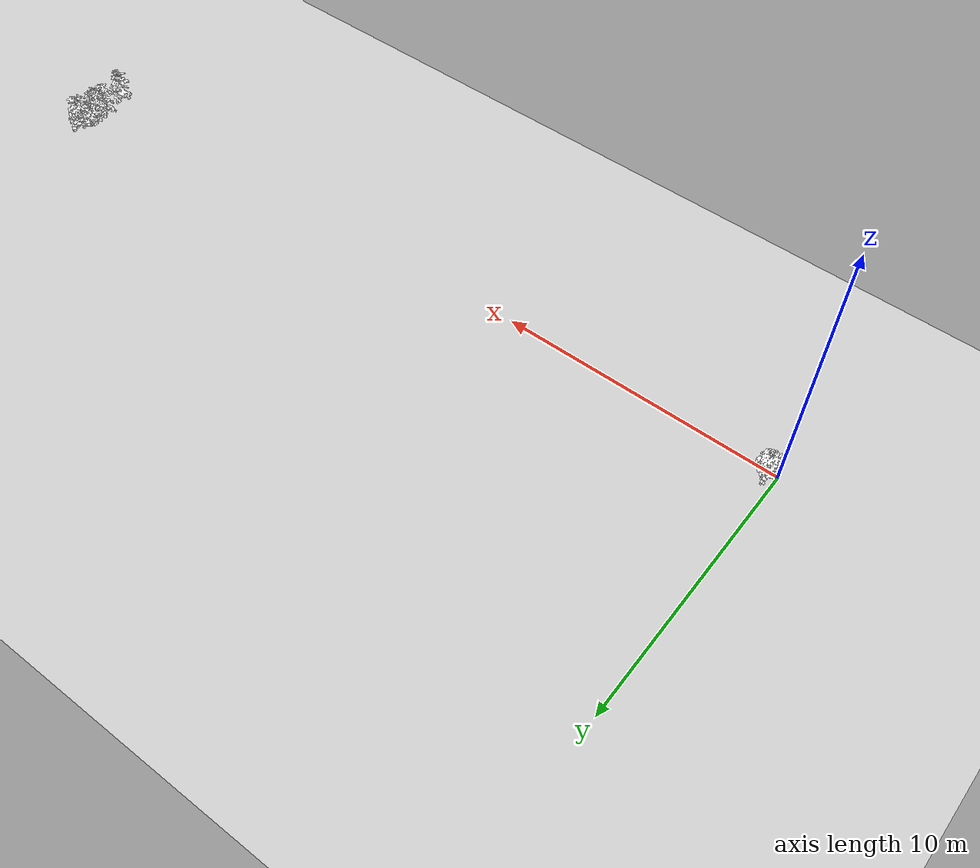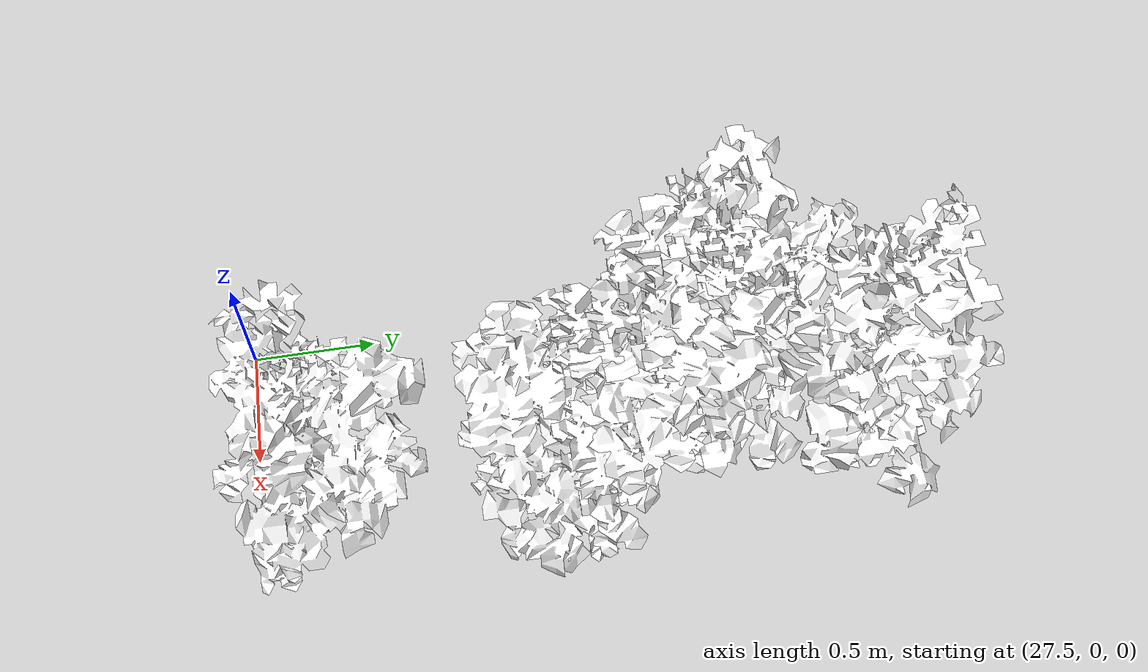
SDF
<sdf version="1.7">
 <world name="field">
  <physics name="1ms" type="ignored">
   <max_step_size>0.001</max_step_size>
   <real_time_factor>1</real_time_factor>
   <real_time_update_rate>1000</real_time_update_rate>
  </physics>
  <plugin name="ignition::gazebo::systems::Physics" filename="ignition-gazebo-physics-system"/>
  <plugin name="ignition::gazebo::systems::UserCommands" filename="ignition-gazebo-user-commands-system"/>
  <plugin name="ignition::gazebo::systems::SceneBroadcaster" filename="ignition-gazebo-scene-broadcaster-system"/>
  <plugin filename="ignition-gazebo-sensors-system" name="ignition::gazebo::systems::Sensors">
   <render_engine>ogre2</render_engine>
  </plugin>
  <scene><ambient>1 1 1 1</ambient><background>0.8 0.8 0.8 1</background><shadows>1</shadows></scene>
  <light name="sun" type="directional">
   <pose>0 0 10 0 -0 0</pose>
   <diffuse>0.8 0.8 0.8 1</diffuse>
   <specular>0.8 0.8 0.8 1</specular>
   <attenuation>
    <range>1000</range>
    <constant>0.9</constant>
    <linear>0.01</linear>
    <quadratic>0.001</quadratic>
   </attenuation>
   <direction>-0.5 0.1 -0.9</direction>
   <spot><inner_angle>0</inner_angle><outer_angle>0</outer_angle><falloff>0</falloff></spot>
  </light>
  <gravity>0 0 -9.8</gravity>
  <magnetic_field>6e-06 2.3e-05 -4.2e-05</magnetic_field>
  <atmosphere type="adiabatic"/>
  <include><uri>ground</uri><name>ground</name><pose>5.0 5.0 0 0 0 0</pose></include>
  <include><uri>tomato_11</uri><name>tomato_11</name><pose>0.3 0.3 0 0 0 0</pose></include>
  <include><uri>tomato_106</uri><name>tomato_106</name><pose>28.0 1.7999999999999998 0 0 0 0</pose></include>
  <include><uri>tomato_107</uri><name>tomato_107</name><pose>28.0 2.1 0 0 0 0</pose></include>
  <include><uri>tomato_111</uri><name>tomato_111</name><pose>28.3 0.3 0 0 0 0</pose></include>
  <include><uri>tomato_114</uri><name>tomato_114</name><pose>28.3 1.2 0 0 0 0</pose></include>
  <include><uri>tomato_115</uri><name>tomato_115</name><pose>28.3 1.5 0 0 0 0</pose></include>
  <include><uri>tomato_118</uri><name>tomato_118</name><pose>28.3 2.4 0 0 0 0</pose></include>
 </world>
</sdf>

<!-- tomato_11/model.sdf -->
<sdf version="1.6">
  <model name="tomato_11">
    <static>true</static>
    <link name="link">
      <collision name="collision">
        <geometry>
          <box>
            <size>.1 .1 1</size>
          </box>
        </geometry>
      </collision>
      <visual name="branch">
        <geometry>
          <mesh>
            <uri>file://tomato_11/meshes/tomato.dae</uri>
            <submesh>
              <name>Branch1</name>
            </submesh>
          </mesh>
        </geometry>
        <material>
          <diffuse>1.0 1.0 1.0</diffuse>
          <pbr>
            <metal>
              <albedo_map>file://tomato_11/materials/textures/AG15brn1.png</albedo_map>
            </metal>
          </pbr>
        </material>
          <plugin filename="ignition-gazebo-label-system" name="ignition::gazebo::systems::Label">
            <label>2</label>
          </plugin>
      </visual>
      <visual name="leaf1">
        <geometry>
          <mesh>
            <uri>file://tomato_11/meshes/tomato.dae</uri>
            <submesh>
              <name>Leaf1</name>
            </submesh>
          </mesh>
        </geometry>
        <material>
          <diffuse>1.0 1.0 1.0</diffuse>
          <pbr>
            <metal>
              <albedo_map>file://tomato_11/materials/textures/AG15lef1.png</albedo_map>
            </metal>
          </pbr>
        </material>
          <plugin filename="ignition-gazebo-label-system" name="ignition::gazebo::systems::Label">
            <label>3</label>
          </plugin>
      </visual>
      <visual name="leaf2">
        <geometry>
          <mesh>
            <uri>file://tomato_11/meshes/tomato.dae</uri>
            <submesh>
              <name>Leaf2</name>
            </submesh>
          </mesh>
        </geometry>
        <material>
          <diffuse>1.0 1.0 1.0</diffuse>
          <pbr>
            <metal>
              <albedo_map>file://tomato_11/materials/textures/AG15lef2.png</albedo_map>
            </metal>
          </pbr>
        </material>
          <plugin filename="ignition-gazebo-label-system" name="ignition::gazebo::systems::Label">
            <label>3</label>
          </plugin>
      </visual>
      <visual name="fruit1">
        <geometry>
          <mesh>
            <uri>file://tomato_11/meshes/tomato.dae</uri>
            <submesh>
              <name>Fruit1</name>
            </submesh>
          </mesh>
        </geometry>
        <material>
          <diffuse>1.0 1.0 1.0</diffuse>
          <pbr>
            <metal>
              <albedo_map>file://tomato_11/materials/textures/AG15frt1.png</albedo_map>
            </metal>
          </pbr>
        </material>
          <plugin filename="ignition-gazebo-label-system" name="ignition::gazebo::systems::Label">
            <label>4</label>
          </plugin>
      </visual>
      <visual name="fruit2">
        <geometry>
          <mesh>
            <uri>file://tomato_11/meshes/tomato.dae</uri>
            <submesh>
              <name>Fruit2</name>
            </submesh>
          </mesh>
        </geometry>
        <material>
          <diffuse>1.0 1.0 1.0</diffuse>
          <pbr>
            <metal>
              <albedo_map>file://tomato_11/materials/textures/AG15frt2.png</albedo_map>
            </metal>
          </pbr>
        </material>
          <plugin filename="ignition-gazebo-label-system" name="ignition::gazebo::systems::Label">
            <label>4</label>
          </plugin>
      </visual>
      <visual name="fruit3">
        <geometry>
          <mesh>
            <uri>file://tomato_11/meshes/tomato.dae</uri>
            <submesh>
              <name>Fruit3</name>
            </submesh>
          </mesh>
        </geometry>
        <material>
          <diffuse>1.0 1.0 1.0</diffuse>
          <pbr>
            <metal>
              <albedo_map>file://tomato_11/materials/textures/AG15frt3.png</albedo_map>
            </metal>
          </pbr>
        </material>
      </visual>
          <plugin filename="ignition-gazebo-label-system" name="ignition::gazebo::systems::Label">
            <label>4</label>
          </plugin>
      <visual name="fruit4">
        <geometry>
          <mesh>
            <uri>file://tomato_11/meshes/tomato.dae</uri>
            <submesh>
              <name>Fruit4</name>
            </submesh>
          </mesh>
        </geometry>
        <material>
          <diffuse>1.0 1.0 1.0</diffuse>
          <pbr>
            <metal>
              <albedo_map>file://tomato_11/materials/textures/AG15frt4.png</albedo_map>
            </metal>
          </pbr>
        </material>
          <plugin filename="ignition-gazebo-label-system" name="ignition::gazebo::systems::Label">
            <label>4</label>
          </plugin>
      </visual>
      <visual name="blossom1">
        <geometry>
          <mesh>
            <uri>file://tomato_11/meshes/tomato.dae</uri>
            <submesh>
              <name>Blossom1</name>
            </submesh>
          </mesh>
        </geometry>
        <material>
          <diffuse>1.0 1.0 1.0</diffuse>
          <pbr>
            <metal>
              <albedo_map>file://tomato_11/materials/textures/AG15blo1.png</albedo_map>
            </metal>
          </pbr>
        </material>
          <plugin filename="ignition-gazebo-label-system" name="ignition::gazebo::systems::Label">
            <label>5</label>
          </plugin>
      </visual>
      <visual name="blossom2">
        <geometry>
          <mesh>
            <uri>file://tomato_11/meshes/tomato.dae</uri>
            <submesh>
              <name>Blossom2</name>
            </submesh>
          </mesh>
        </geometry>
        <material>
          <diffuse>1.0 1.0 1.0</diffuse>
          <pbr>
            <metal>
              <albedo_map>file://tomato_11/materials/textures/AG15blo2.png</albedo_map>
            </metal>
          </pbr>
        </material>
          <plugin filename="ignition-gazebo-label-system" name="ignition::gazebo::systems::Label">
            <label>5</label>
          </plugin>
      </visual>
      <visual name="blossom3">
        <geometry>
          <mesh>
            <uri>file://tomato_11/meshes/tomato.dae</uri>
            <submesh>
              <name>Blossom3</name>
            </submesh>
          </mesh>
        </geometry>
        <material>
          <diffuse>1.0 1.0 1.0</diffuse>
          <pbr>
            <metal>
              <albedo_map>file://tomato_11/materials/textures/AG15blo3.png</albedo_map>
            </metal>
          </pbr>
        </material>
          <plugin filename="ignition-gazebo-label-system" name="ignition::gazebo::systems::Label">
            <label>5</label>
          </plugin>
      </visual>
    </link>
  </model>
</sdf>

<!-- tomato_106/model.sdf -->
<sdf version="1.6">
  <model name="tomato_106">
    <static>true</static>
    <link name="link">
      <collision name="collision">
        <geometry>
          <box>
            <size>.1 .1 1</size>
          </box>
        </geometry>
      </collision>
      <visual name="branch">
        <geometry>
          <mesh>
            <uri>file://tomato_106/meshes/tomato.dae</uri>
            <submesh>
              <name>Branch1</name>
            </submesh>
          </mesh>
        </geometry>
        <material>
          <diffuse>1.0 1.0 1.0</diffuse>
          <pbr>
            <metal>
              <albedo_map>file://tomato_106/materials/textures/AG15brn1.png</albedo_map>
            </metal>
          </pbr>
        </material>
      </visual>
      <visual name="leaf1">
        <geometry>
          <mesh>
            <uri>file://tomato_106/meshes/tomato.dae</uri>
            <submesh>
              <name>Leaf1</name>
            </submesh>
          </mesh>
        </geometry>
        <material>
          <diffuse>1.0 1.0 1.0</diffuse>
          <pbr>
            <metal>
              <albedo_map>file://tomato_106/materials/textures/AG15lef1.png</albedo_map>
            </metal>
          </pbr>
        </material>
      </visual>
      <visual name="leaf2">
        <geometry>
          <mesh>
            <uri>file://tomato_106/meshes/tomato.dae</uri>
            <submesh>
              <name>Leaf2</name>
            </submesh>
          </mesh>
        </geometry>
        <material>
          <diffuse>1.0 1.0 1.0</diffuse>
          <pbr>
            <metal>
              <albedo_map>file://tomato_106/materials/textures/AG15lef2.png</albedo_map>
            </metal>
          </pbr>
        </material>
      </visual>
      <visual name="fruit1">
        <geometry>
          <mesh>
            <uri>file://tomato_106/meshes/tomato.dae</uri>
            <submesh>
              <name>Fruit1</name>
            </submesh>
          </mesh>
        </geometry>
        <material>
          <diffuse>1.0 1.0 1.0</diffuse>
          <pbr>
            <metal>
              <albedo_map>file://tomato_106/materials/textures/AG15frt1.png</albedo_map>
            </metal>
          </pbr>
        </material>
      </visual>
      <visual name="fruit2">
        <geometry>
          <mesh>
            <uri>file://tomato_106/meshes/tomato.dae</uri>
            <submesh>
              <name>Fruit2</name>
            </submesh>
          </mesh>
        </geometry>
        <material>
          <diffuse>1.0 1.0 1.0</diffuse>
          <pbr>
            <metal>
              <albedo_map>file://tomato_106/materials/textures/AG15frt2.png</albedo_map>
            </metal>
          </pbr>
        </material>
      </visual>
      <visual name="fruit3">
        <geometry>
          <mesh>
            <uri>file://tomato_106/meshes/tomato.dae</uri>
            <submesh>
              <name>Fruit3</name>
            </submesh>
          </mesh>
        </geometry>
        <material>
          <diffuse>1.0 1.0 1.0</diffuse>
          <pbr>
            <metal>
              <albedo_map>file://tomato_106/materials/textures/AG15frt3.png</albedo_map>
            </metal>
          </pbr>
        </material>
      </visual>
      <visual name="fruit4">
        <geometry>
          <mesh>
            <uri>file://tomato_106/meshes/tomato.dae</uri>
            <submesh>
              <name>Fruit4</name>
            </submesh>
          </mesh>
        </geometry>
        <material>
          <diffuse>1.0 1.0 1.0</diffuse>
          <pbr>
            <metal>
              <albedo_map>file://tomato_106/materials/textures/AG15frt4.png</albedo_map>
            </metal>
          </pbr>
        </material>
      </visual>
      <visual name="blossom1">
        <geometry>
          <mesh>
            <uri>file://tomato_106/meshes/tomato.dae</uri>
            <submesh>
              <name>Blossom1</name>
            </submesh>
          </mesh>
        </geometry>
        <material>
          <diffuse>1.0 1.0 1.0</diffuse>
          <pbr>
            <metal>
              <albedo_map>file://tomato_106/materials/textures/AG15blo1.png</albedo_map>
            </metal>
          </pbr>
        </material>
      </visual>
      <visual name="blossom2">
        <geometry>
          <mesh>
            <uri>file://tomato_106/meshes/tomato.dae</uri>
            <submesh>
              <name>Blossom2</name>
            </submesh>
          </mesh>
        </geometry>
        <material>
          <diffuse>1.0 1.0 1.0</diffuse>
          <pbr>
            <metal>
              <albedo_map>file://tomato_106/materials/textures/AG15blo2.png</albedo_map>
            </metal>
          </pbr>
        </material>
      </visual>
      <visual name="blossom3">
        <geometry>
          <mesh>
            <uri>file://tomato_106/meshes/tomato.dae</uri>
            <submesh>
              <name>Blossom3</name>
            </submesh>
          </mesh>
        </geometry>
        <material>
          <diffuse>1.0 1.0 1.0</diffuse>
          <pbr>
            <metal>
              <albedo_map>file://tomato_106/materials/textures/AG15blo3.png</albedo_map>
            </metal>
          </pbr>
        </material>
      </visual>
    </link>
  </model>
</sdf>

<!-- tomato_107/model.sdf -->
<sdf version="1.6">
  <model name="tomato_107">
    <static>true</static>
    <link name="link">
      <collision name="collision">
        <geometry>
          <box>
            <size>.1 .1 1</size>
          </box>
        </geometry>
      </collision>
      <visual name="branch">
        <geometry>
          <mesh>
            <uri>file://tomato_107/meshes/tomato.dae</uri>
            <submesh>
              <name>Branch1</name>
            </submesh>
          </mesh>
        </geometry>
        <material>
          <diffuse>1.0 1.0 1.0</diffuse>
          <pbr>
            <metal>
              <albedo_map>file://tomato_107/materials/textures/AG15brn1.png</albedo_map>
            </metal>
          </pbr>
        </material>
      </visual>
      <visual name="leaf1">
        <geometry>
          <mesh>
            <uri>file://tomato_107/meshes/tomato.dae</uri>
            <submesh>
              <name>Leaf1</name>
            </submesh>
          </mesh>
        </geometry>
        <material>
          <diffuse>1.0 1.0 1.0</diffuse>
          <pbr>
            <metal>
              <albedo_map>file://tomato_107/materials/textures/AG15lef1.png</albedo_map>
            </metal>
          </pbr>
        </material>
      </visual>
      <visual name="leaf2">
        <geometry>
          <mesh>
            <uri>file://tomato_107/meshes/tomato.dae</uri>
            <submesh>
              <name>Leaf2</name>
            </submesh>
          </mesh>
        </geometry>
        <material>
          <diffuse>1.0 1.0 1.0</diffuse>
          <pbr>
            <metal>
              <albedo_map>file://tomato_107/materials/textures/AG15lef2.png</albedo_map>
            </metal>
          </pbr>
        </material>
      </visual>
      <visual name="fruit1">
        <geometry>
          <mesh>
            <uri>file://tomato_107/meshes/tomato.dae</uri>
            <submesh>
              <name>Fruit1</name>
            </submesh>
          </mesh>
        </geometry>
        <material>
          <diffuse>1.0 1.0 1.0</diffuse>
          <pbr>
            <metal>
              <albedo_map>file://tomato_107/materials/textures/AG15frt1.png</albedo_map>
            </metal>
          </pbr>
        </material>
      </visual>
      <visual name="fruit2">
        <geometry>
          <mesh>
            <uri>file://tomato_107/meshes/tomato.dae</uri>
            <submesh>
              <name>Fruit2</name>
            </submesh>
          </mesh>
        </geometry>
        <material>
          <diffuse>1.0 1.0 1.0</diffuse>
          <pbr>
            <metal>
              <albedo_map>file://tomato_107/materials/textures/AG15frt2.png</albedo_map>
            </metal>
          </pbr>
        </material>
      </visual>
      <visual name="fruit3">
        <geometry>
          <mesh>
            <uri>file://tomato_107/meshes/tomato.dae</uri>
            <submesh>
              <name>Fruit3</name>
            </submesh>
          </mesh>
        </geometry>
        <material>
          <diffuse>1.0 1.0 1.0</diffuse>
          <pbr>
            <metal>
              <albedo_map>file://tomato_107/materials/textures/AG15frt3.png</albedo_map>
            </metal>
          </pbr>
        </material>
      </visual>
      <visual name="fruit4">
        <geometry>
          <mesh>
            <uri>file://tomato_107/meshes/tomato.dae</uri>
            <submesh>
              <name>Fruit4</name>
            </submesh>
          </mesh>
        </geometry>
        <material>
          <diffuse>1.0 1.0 1.0</diffuse>
          <pbr>
            <metal>
              <albedo_map>file://tomato_107/materials/textures/AG15frt4.png</albedo_map>
            </metal>
          </pbr>
        </material>
      </visual>
      <visual name="blossom1">
        <geometry>
          <mesh>
            <uri>file://tomato_107/meshes/tomato.dae</uri>
            <submesh>
              <name>Blossom1</name>
            </submesh>
          </mesh>
        </geometry>
        <material>
          <diffuse>1.0 1.0 1.0</diffuse>
          <pbr>
            <metal>
              <albedo_map>file://tomato_107/materials/textures/AG15blo1.png</albedo_map>
            </metal>
          </pbr>
        </material>
      </visual>
      <visual name="blossom2">
        <geometry>
          <mesh>
            <uri>file://tomato_107/meshes/tomato.dae</uri>
            <submesh>
              <name>Blossom2</name>
            </submesh>
          </mesh>
        </geometry>
        <material>
          <diffuse>1.0 1.0 1.0</diffuse>
          <pbr>
            <metal>
              <albedo_map>file://tomato_107/materials/textures/AG15blo2.png</albedo_map>
            </metal>
          </pbr>
        </material>
      </visual>
      <visual name="blossom3">
        <geometry>
          <mesh>
            <uri>file://tomato_107/meshes/tomato.dae</uri>
            <submesh>
              <name>Blossom3</name>
            </submesh>
          </mesh>
        </geometry>
        <material>
          <diffuse>1.0 1.0 1.0</diffuse>
          <pbr>
            <metal>
              <albedo_map>file://tomato_107/materials/textures/AG15blo3.png</albedo_map>
            </metal>
          </pbr>
        </material>
      </visual>
    </link>
  </model>
</sdf>

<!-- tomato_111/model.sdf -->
<sdf version="1.6">
  <model name="tomato_111">
    <static>true</static>
    <link name="link">
      <collision name="collision">
        <geometry>
          <box>
            <size>.1 .1 1</size>
          </box>
        </geometry>
      </collision>
      <visual name="branch">
        <geometry>
          <mesh>
            <uri>file://tomato_111/meshes/tomato.dae</uri>
            <submesh>
              <name>Branch1</name>
            </submesh>
          </mesh>
        </geometry>
        <material>
          <diffuse>1.0 1.0 1.0</diffuse>
          <pbr>
            <metal>
              <albedo_map>file://tomato_111/materials/textures/AG15brn1.png</albedo_map>
            </metal>
          </pbr>
        </material>
      </visual>
      <visual name="leaf1">
        <geometry>
          <mesh>
            <uri>file://tomato_111/meshes/tomato.dae</uri>
            <submesh>
              <name>Leaf1</name>
            </submesh>
          </mesh>
        </geometry>
        <material>
          <diffuse>1.0 1.0 1.0</diffuse>
          <pbr>
            <metal>
              <albedo_map>file://tomato_111/materials/textures/AG15lef1.png</albedo_map>
            </metal>
          </pbr>
        </material>
      </visual>
      <visual name="leaf2">
        <geometry>
          <mesh>
            <uri>file://tomato_111/meshes/tomato.dae</uri>
            <submesh>
              <name>Leaf2</name>
            </submesh>
          </mesh>
        </geometry>
        <material>
          <diffuse>1.0 1.0 1.0</diffuse>
          <pbr>
            <metal>
              <albedo_map>file://tomato_111/materials/textures/AG15lef2.png</albedo_map>
            </metal>
          </pbr>
        </material>
      </visual>
      <visual name="fruit1">
        <geometry>
          <mesh>
            <uri>file://tomato_111/meshes/tomato.dae</uri>
            <submesh>
              <name>Fruit1</name>
            </submesh>
          </mesh>
        </geometry>
        <material>
          <diffuse>1.0 1.0 1.0</diffuse>
          <pbr>
            <metal>
              <albedo_map>file://tomato_111/materials/textures/AG15frt1.png</albedo_map>
            </metal>
          </pbr>
        </material>
      </visual>
      <visual name="fruit2">
        <geometry>
          <mesh>
            <uri>file://tomato_111/meshes/tomato.dae</uri>
            <submesh>
              <name>Fruit2</name>
            </submesh>
          </mesh>
        </geometry>
        <material>
          <diffuse>1.0 1.0 1.0</diffuse>
          <pbr>
            <metal>
              <albedo_map>file://tomato_111/materials/textures/AG15frt2.png</albedo_map>
            </metal>
          </pbr>
        </material>
      </visual>
      <visual name="fruit3">
        <geometry>
          <mesh>
            <uri>file://tomato_111/meshes/tomato.dae</uri>
            <submesh>
              <name>Fruit3</name>
            </submesh>
          </mesh>
        </geometry>
        <material>
          <diffuse>1.0 1.0 1.0</diffuse>
          <pbr>
            <metal>
              <albedo_map>file://tomato_111/materials/textures/AG15frt3.png</albedo_map>
            </metal>
          </pbr>
        </material>
      </visual>
      <visual name="fruit4">
        <geometry>
          <mesh>
            <uri>file://tomato_111/meshes/tomato.dae</uri>
            <submesh>
              <name>Fruit4</name>
            </submesh>
          </mesh>
        </geometry>
        <material>
          <diffuse>1.0 1.0 1.0</diffuse>
          <pbr>
            <metal>
              <albedo_map>file://tomato_111/materials/textures/AG15frt4.png</albedo_map>
            </metal>
          </pbr>
        </material>
      </visual>
      <visual name="blossom1">
        <geometry>
          <mesh>
            <uri>file://tomato_111/meshes/tomato.dae</uri>
            <submesh>
              <name>Blossom1</name>
            </submesh>
          </mesh>
        </geometry>
        <material>
          <diffuse>1.0 1.0 1.0</diffuse>
          <pbr>
            <metal>
              <albedo_map>file://tomato_111/materials/textures/AG15blo1.png</albedo_map>
            </metal>
          </pbr>
        </material>
      </visual>
      <visual name="blossom2">
        <geometry>
          <mesh>
            <uri>file://tomato_111/meshes/tomato.dae</uri>
            <submesh>
              <name>Blossom2</name>
            </submesh>
          </mesh>
        </geometry>
        <material>
          <diffuse>1.0 1.0 1.0</diffuse>
          <pbr>
            <metal>
              <albedo_map>file://tomato_111/materials/textures/AG15blo2.png</albedo_map>
            </metal>
          </pbr>
        </material>
      </visual>
      <visual name="blossom3">
        <geometry>
          <mesh>
            <uri>file://tomato_111/meshes/tomato.dae</uri>
            <submesh>
              <name>Blossom3</name>
            </submesh>
          </mesh>
        </geometry>
        <material>
          <diffuse>1.0 1.0 1.0</diffuse>
          <pbr>
            <metal>
              <albedo_map>file://tomato_111/materials/textures/AG15blo3.png</albedo_map>
            </metal>
          </pbr>
        </material>
      </visual>
    </link>
  </model>
</sdf>

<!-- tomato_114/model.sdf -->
<sdf version="1.6">
  <model name="tomato_114">
    <static>true</static>
    <link name="link">
      <collision name="collision">
        <geometry>
          <box>
            <size>.1 .1 1</size>
          </box>
        </geometry>
      </collision>
      <visual name="branch">
        <geometry>
          <mesh>
            <uri>file://tomato_114/meshes/tomato.dae</uri>
            <submesh>
              <name>Branch1</name>
            </submesh>
          </mesh>
        </geometry>
        <material>
          <diffuse>1.0 1.0 1.0</diffuse>
          <pbr>
            <metal>
              <albedo_map>file://tomato_114/materials/textures/AG15brn1.png</albedo_map>
            </metal>
          </pbr>
        </material>
      </visual>
      <visual name="leaf1">
        <geometry>
          <mesh>
            <uri>file://tomato_114/meshes/tomato.dae</uri>
            <submesh>
              <name>Leaf1</name>
            </submesh>
          </mesh>
        </geometry>
        <material>
          <diffuse>1.0 1.0 1.0</diffuse>
          <pbr>
            <metal>
              <albedo_map>file://tomato_114/materials/textures/AG15lef1.png</albedo_map>
            </metal>
          </pbr>
        </material>
      </visual>
      <visual name="leaf2">
        <geometry>
          <mesh>
            <uri>file://tomato_114/meshes/tomato.dae</uri>
            <submesh>
              <name>Leaf2</name>
            </submesh>
          </mesh>
        </geometry>
        <material>
          <diffuse>1.0 1.0 1.0</diffuse>
          <pbr>
            <metal>
              <albedo_map>file://tomato_114/materials/textures/AG15lef2.png</albedo_map>
            </metal>
          </pbr>
        </material>
      </visual>
      <visual name="fruit1">
        <geometry>
          <mesh>
            <uri>file://tomato_114/meshes/tomato.dae</uri>
            <submesh>
              <name>Fruit1</name>
            </submesh>
          </mesh>
        </geometry>
        <material>
          <diffuse>1.0 1.0 1.0</diffuse>
          <pbr>
            <metal>
              <albedo_map>file://tomato_114/materials/textures/AG15frt1.png</albedo_map>
            </metal>
          </pbr>
        </material>
      </visual>
      <visual name="fruit2">
        <geometry>
          <mesh>
            <uri>file://tomato_114/meshes/tomato.dae</uri>
            <submesh>
              <name>Fruit2</name>
            </submesh>
          </mesh>
        </geometry>
        <material>
          <diffuse>1.0 1.0 1.0</diffuse>
          <pbr>
            <metal>
              <albedo_map>file://tomato_114/materials/textures/AG15frt2.png</albedo_map>
            </metal>
          </pbr>
        </material>
      </visual>
      <visual name="fruit3">
        <geometry>
          <mesh>
            <uri>file://tomato_114/meshes/tomato.dae</uri>
            <submesh>
              <name>Fruit3</name>
            </submesh>
          </mesh>
        </geometry>
        <material>
          <diffuse>1.0 1.0 1.0</diffuse>
          <pbr>
            <metal>
              <albedo_map>file://tomato_114/materials/textures/AG15frt3.png</albedo_map>
            </metal>
          </pbr>
        </material>
      </visual>
      <visual name="fruit4">
        <geometry>
          <mesh>
            <uri>file://tomato_114/meshes/tomato.dae</uri>
            <submesh>
              <name>Fruit4</name>
            </submesh>
          </mesh>
        </geometry>
        <material>
          <diffuse>1.0 1.0 1.0</diffuse>
          <pbr>
            <metal>
              <albedo_map>file://tomato_114/materials/textures/AG15frt4.png</albedo_map>
            </metal>
          </pbr>
        </material>
      </visual>
      <visual name="blossom1">
        <geometry>
          <mesh>
            <uri>file://tomato_114/meshes/tomato.dae</uri>
            <submesh>
              <name>Blossom1</name>
            </submesh>
          </mesh>
        </geometry>
        <material>
          <diffuse>1.0 1.0 1.0</diffuse>
          <pbr>
            <metal>
              <albedo_map>file://tomato_114/materials/textures/AG15blo1.png</albedo_map>
            </metal>
          </pbr>
        </material>
      </visual>
      <visual name="blossom2">
        <geometry>
          <mesh>
            <uri>file://tomato_114/meshes/tomato.dae</uri>
            <submesh>
              <name>Blossom2</name>
            </submesh>
          </mesh>
        </geometry>
        <material>
          <diffuse>1.0 1.0 1.0</diffuse>
          <pbr>
            <metal>
              <albedo_map>file://tomato_114/materials/textures/AG15blo2.png</albedo_map>
            </metal>
          </pbr>
        </material>
      </visual>
      <visual name="blossom3">
        <geometry>
          <mesh>
            <uri>file://tomato_114/meshes/tomato.dae</uri>
            <submesh>
              <name>Blossom3</name>
            </submesh>
          </mesh>
        </geometry>
        <material>
          <diffuse>1.0 1.0 1.0</diffuse>
          <pbr>
            <metal>
              <albedo_map>file://tomato_114/materials/textures/AG15blo3.png</albedo_map>
            </metal>
          </pbr>
        </material>
      </visual>
    </link>
  </model>
</sdf>

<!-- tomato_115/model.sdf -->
<sdf version="1.6">
  <model name="tomato_115">
    <static>true</static>
    <link name="link">
      <collision name="collision">
        <geometry>
          <box>
            <size>.1 .1 1</size>
          </box>
        </geometry>
      </collision>
      <visual name="branch">
        <geometry>
          <mesh>
            <uri>file://tomato_115/meshes/tomato.dae</uri>
            <submesh>
              <name>Branch1</name>
            </submesh>
          </mesh>
        </geometry>
        <material>
          <diffuse>1.0 1.0 1.0</diffuse>
          <pbr>
            <metal>
              <albedo_map>file://tomato_115/materials/textures/AG15brn1.png</albedo_map>
            </metal>
          </pbr>
        </material>
      </visual>
      <visual name="leaf1">
        <geometry>
          <mesh>
            <uri>file://tomato_115/meshes/tomato.dae</uri>
            <submesh>
              <name>Leaf1</name>
            </submesh>
          </mesh>
        </geometry>
        <material>
          <diffuse>1.0 1.0 1.0</diffuse>
          <pbr>
            <metal>
              <albedo_map>file://tomato_115/materials/textures/AG15lef1.png</albedo_map>
            </metal>
          </pbr>
        </material>
      </visual>
      <visual name="leaf2">
        <geometry>
          <mesh>
            <uri>file://tomato_115/meshes/tomato.dae</uri>
            <submesh>
              <name>Leaf2</name>
            </submesh>
          </mesh>
        </geometry>
        <material>
          <diffuse>1.0 1.0 1.0</diffuse>
          <pbr>
            <metal>
              <albedo_map>file://tomato_115/materials/textures/AG15lef2.png</albedo_map>
            </metal>
          </pbr>
        </material>
      </visual>
      <visual name="fruit1">
        <geometry>
          <mesh>
            <uri>file://tomato_115/meshes/tomato.dae</uri>
            <submesh>
              <name>Fruit1</name>
            </submesh>
          </mesh>
        </geometry>
        <material>
          <diffuse>1.0 1.0 1.0</diffuse>
          <pbr>
            <metal>
              <albedo_map>file://tomato_115/materials/textures/AG15frt1.png</albedo_map>
            </metal>
          </pbr>
        </material>
      </visual>
      <visual name="fruit2">
        <geometry>
          <mesh>
            <uri>file://tomato_115/meshes/tomato.dae</uri>
            <submesh>
              <name>Fruit2</name>
            </submesh>
          </mesh>
        </geometry>
        <material>
          <diffuse>1.0 1.0 1.0</diffuse>
          <pbr>
            <metal>
              <albedo_map>file://tomato_115/materials/textures/AG15frt2.png</albedo_map>
            </metal>
          </pbr>
        </material>
      </visual>
      <visual name="fruit3">
        <geometry>
          <mesh>
            <uri>file://tomato_115/meshes/tomato.dae</uri>
            <submesh>
              <name>Fruit3</name>
            </submesh>
          </mesh>
        </geometry>
        <material>
          <diffuse>1.0 1.0 1.0</diffuse>
          <pbr>
            <metal>
              <albedo_map>file://tomato_115/materials/textures/AG15frt3.png</albedo_map>
            </metal>
          </pbr>
        </material>
      </visual>
      <visual name="fruit4">
        <geometry>
          <mesh>
            <uri>file://tomato_115/meshes/tomato.dae</uri>
            <submesh>
              <name>Fruit4</name>
            </submesh>
          </mesh>
        </geometry>
        <material>
          <diffuse>1.0 1.0 1.0</diffuse>
          <pbr>
            <metal>
              <albedo_map>file://tomato_115/materials/textures/AG15frt4.png</albedo_map>
            </metal>
          </pbr>
        </material>
      </visual>
      <visual name="blossom1">
        <geometry>
          <mesh>
            <uri>file://tomato_115/meshes/tomato.dae</uri>
            <submesh>
              <name>Blossom1</name>
            </submesh>
          </mesh>
        </geometry>
        <material>
          <diffuse>1.0 1.0 1.0</diffuse>
          <pbr>
            <metal>
              <albedo_map>file://tomato_115/materials/textures/AG15blo1.png</albedo_map>
            </metal>
          </pbr>
        </material>
      </visual>
      <visual name="blossom2">
        <geometry>
          <mesh>
            <uri>file://tomato_115/meshes/tomato.dae</uri>
            <submesh>
              <name>Blossom2</name>
            </submesh>
          </mesh>
        </geometry>
        <material>
          <diffuse>1.0 1.0 1.0</diffuse>
          <pbr>
            <metal>
              <albedo_map>file://tomato_115/materials/textures/AG15blo2.png</albedo_map>
            </metal>
          </pbr>
        </material>
      </visual>
      <visual name="blossom3">
        <geometry>
          <mesh>
            <uri>file://tomato_115/meshes/tomato.dae</uri>
            <submesh>
              <name>Blossom3</name>
            </submesh>
          </mesh>
        </geometry>
        <material>
          <diffuse>1.0 1.0 1.0</diffuse>
          <pbr>
            <metal>
              <albedo_map>file://tomato_115/materials/textures/AG15blo3.png</albedo_map>
            </metal>
          </pbr>
        </material>
      </visual>
    </link>
  </model>
</sdf>

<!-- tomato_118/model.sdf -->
<sdf version="1.6">
  <model name="tomato_118">
    <static>true</static>
    <link name="link">
      <collision name="collision">
        <geometry>
          <box>
            <size>.1 .1 1</size>
          </box>
        </geometry>
      </collision>
      <visual name="branch">
        <geometry>
          <mesh>
            <uri>file://tomato_118/meshes/tomato.dae</uri>
            <submesh>
              <name>Branch1</name>
            </submesh>
          </mesh>
        </geometry>
        <material>
          <diffuse>1.0 1.0 1.0</diffuse>
          <pbr>
            <metal>
              <albedo_map>file://tomato_118/materials/textures/AG15brn1.png</albedo_map>
            </metal>
          </pbr>
        </material>
      </visual>
      <visual name="leaf1">
        <geometry>
          <mesh>
            <uri>file://tomato_118/meshes/tomato.dae</uri>
            <submesh>
              <name>Leaf1</name>
            </submesh>
          </mesh>
        </geometry>
        <material>
          <diffuse>1.0 1.0 1.0</diffuse>
          <pbr>
            <metal>
              <albedo_map>file://tomato_118/materials/textures/AG15lef1.png</albedo_map>
            </metal>
          </pbr>
        </material>
      </visual>
      <visual name="leaf2">
        <geometry>
          <mesh>
            <uri>file://tomato_118/meshes/tomato.dae</uri>
            <submesh>
              <name>Leaf2</name>
            </submesh>
          </mesh>
        </geometry>
        <material>
          <diffuse>1.0 1.0 1.0</diffuse>
          <pbr>
            <metal>
              <albedo_map>file://tomato_118/materials/textures/AG15lef2.png</albedo_map>
            </metal>
          </pbr>
        </material>
      </visual>
      <visual name="fruit1">
        <geometry>
          <mesh>
            <uri>file://tomato_118/meshes/tomato.dae</uri>
            <submesh>
              <name>Fruit1</name>
            </submesh>
          </mesh>
        </geometry>
        <material>
          <diffuse>1.0 1.0 1.0</diffuse>
          <pbr>
            <metal>
              <albedo_map>file://tomato_118/materials/textures/AG15frt1.png</albedo_map>
            </metal>
          </pbr>
        </material>
      </visual>
      <visual name="fruit2">
        <geometry>
          <mesh>
            <uri>file://tomato_118/meshes/tomato.dae</uri>
            <submesh>
              <name>Fruit2</name>
            </submesh>
          </mesh>
        </geometry>
        <material>
          <diffuse>1.0 1.0 1.0</diffuse>
          <pbr>
            <metal>
              <albedo_map>file://tomato_118/materials/textures/AG15frt2.png</albedo_map>
            </metal>
          </pbr>
        </material>
      </visual>
      <visual name="fruit3">
        <geometry>
          <mesh>
            <uri>file://tomato_118/meshes/tomato.dae</uri>
            <submesh>
              <name>Fruit3</name>
            </submesh>
          </mesh>
        </geometry>
        <material>
          <diffuse>1.0 1.0 1.0</diffuse>
          <pbr>
            <metal>
              <albedo_map>file://tomato_118/materials/textures/AG15frt3.png</albedo_map>
            </metal>
          </pbr>
        </material>
      </visual>
      <visual name="fruit4">
        <geometry>
          <mesh>
            <uri>file://tomato_118/meshes/tomato.dae</uri>
            <submesh>
              <name>Fruit4</name>
            </submesh>
          </mesh>
        </geometry>
        <material>
          <diffuse>1.0 1.0 1.0</diffuse>
          <pbr>
            <metal>
              <albedo_map>file://tomato_118/materials/textures/AG15frt4.png</albedo_map>
            </metal>
          </pbr>
        </material>
      </visual>
      <visual name="blossom1">
        <geometry>
          <mesh>
            <uri>file://tomato_118/meshes/tomato.dae</uri>
            <submesh>
              <name>Blossom1</name>
            </submesh>
          </mesh>
        </geometry>
        <material>
          <diffuse>1.0 1.0 1.0</diffuse>
          <pbr>
            <metal>
              <albedo_map>file://tomato_118/materials/textures/AG15blo1.png</albedo_map>
            </metal>
          </pbr>
        </material>
      </visual>
      <visual name="blossom2">
        <geometry>
          <mesh>
            <uri>file://tomato_118/meshes/tomato.dae</uri>
            <submesh>
              <name>Blossom2</name>
            </submesh>
          </mesh>
        </geometry>
        <material>
          <diffuse>1.0 1.0 1.0</diffuse>
          <pbr>
            <metal>
              <albedo_map>file://tomato_118/materials/textures/AG15blo2.png</albedo_map>
            </metal>
          </pbr>
        </material>
      </visual>
      <visual name="blossom3">
        <geometry>
          <mesh>
            <uri>file://tomato_118/meshes/tomato.dae</uri>
            <submesh>
              <name>Blossom3</name>
            </submesh>
          </mesh>
        </geometry>
        <material>
          <diffuse>1.0 1.0 1.0</diffuse>
          <pbr>
            <metal>
              <albedo_map>file://tomato_118/materials/textures/AG15blo3.png</albedo_map>
            </metal>
          </pbr>
        </material>
      </visual>
    </link>
  </model>
</sdf>
